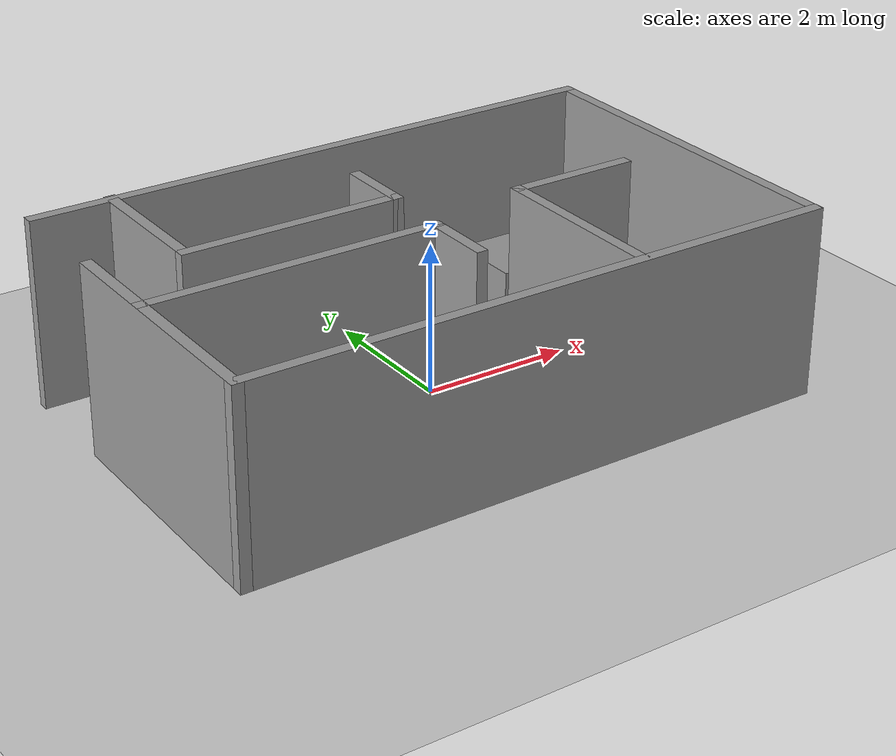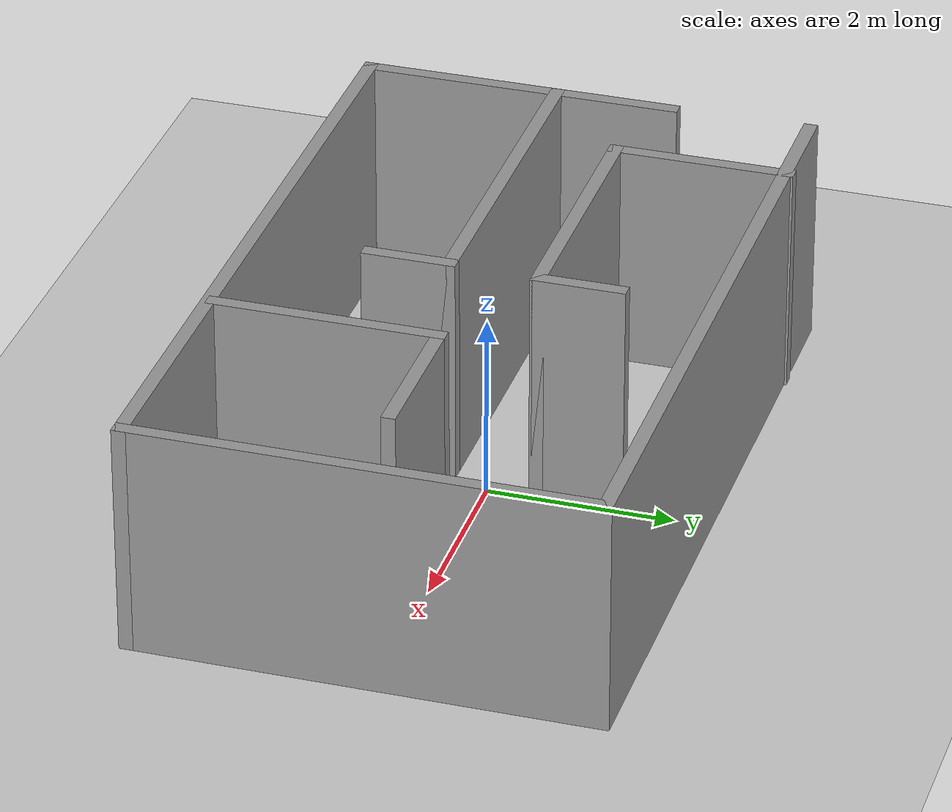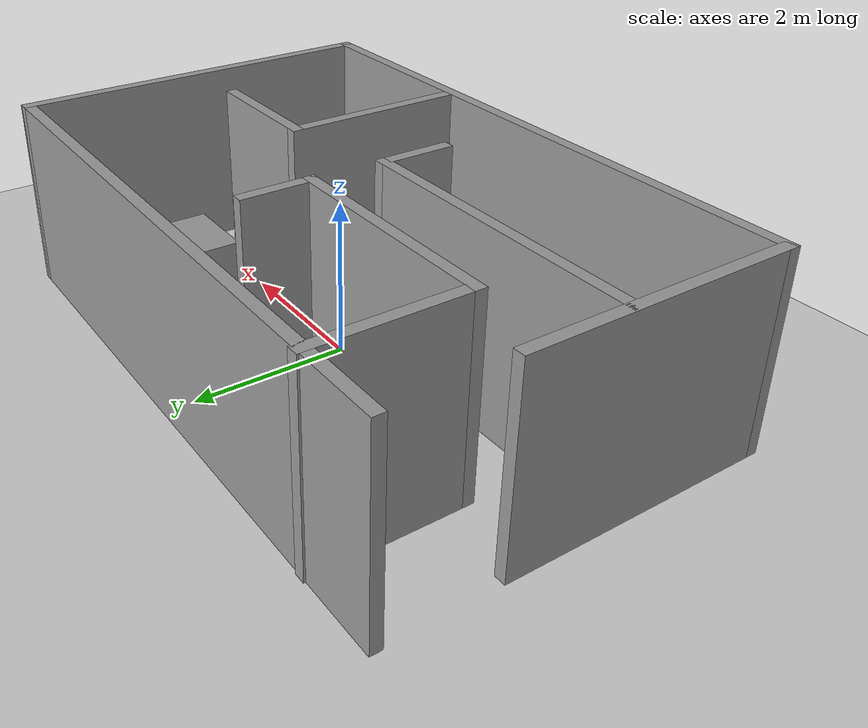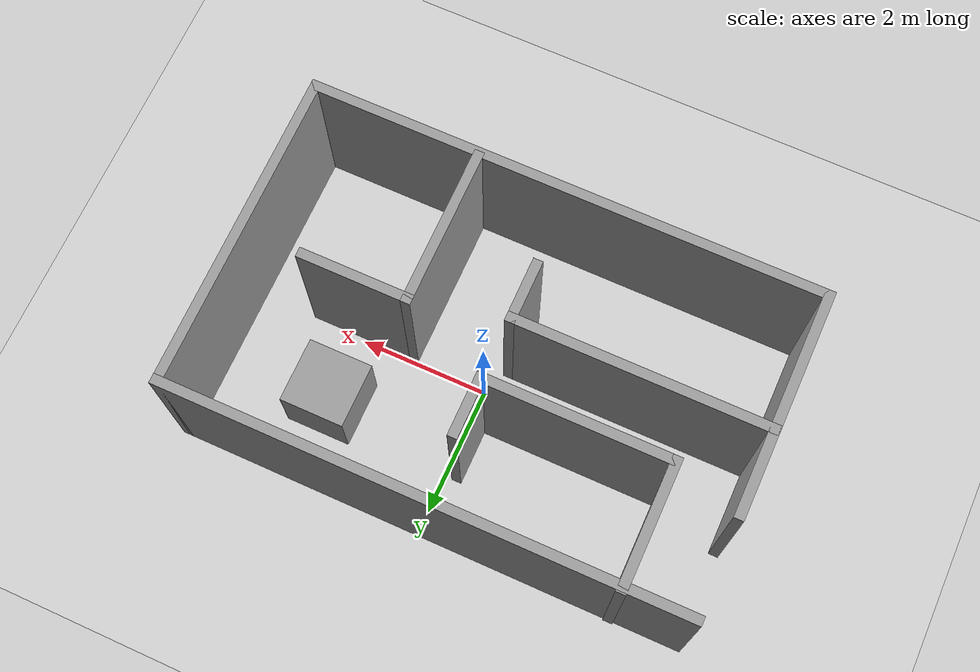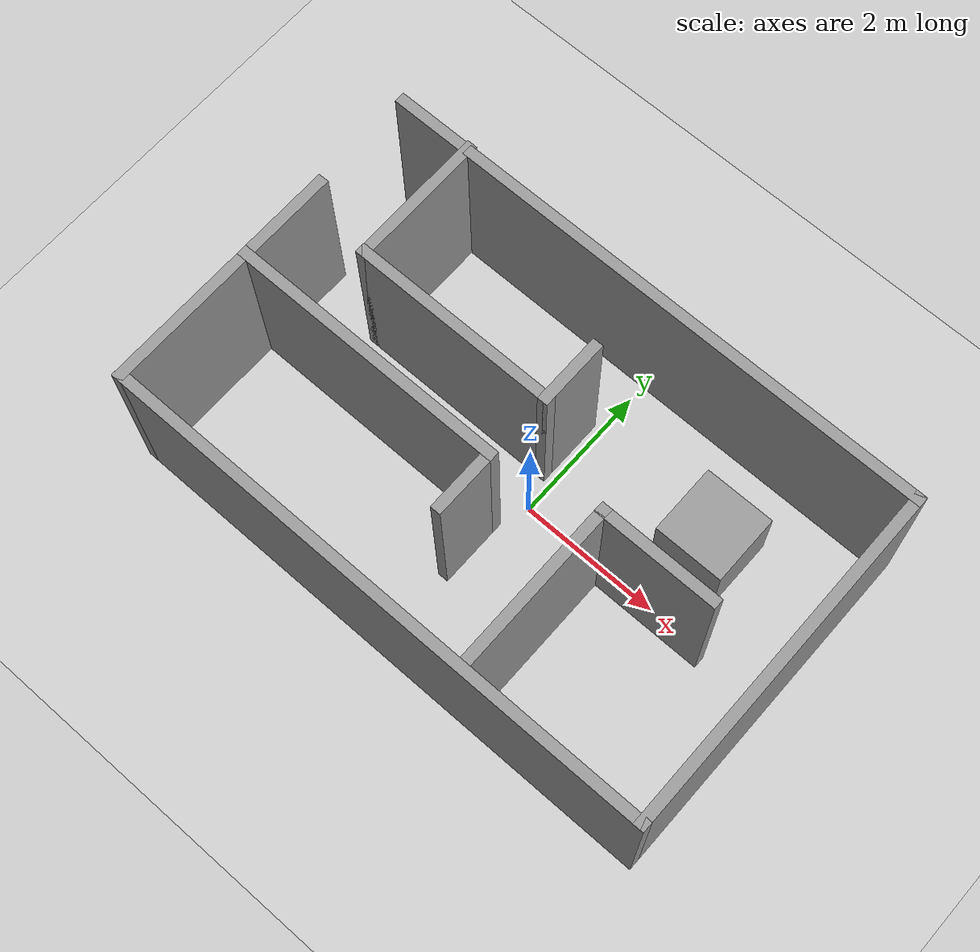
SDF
<sdf version="1.7">
 <world name="default">
  <light name="sun" type="directional">
   <pose>0 0 10 0 -0 0</pose>
   <diffuse>0.8 0.8 0.8 1</diffuse>
   <specular>0.2 0.2 0.2 1</specular>
   <attenuation>
    <range>1000</range>
    <constant>0.9</constant>
    <linear>0.01</linear>
    <quadratic>0.001</quadratic>
   </attenuation>
   <direction>-0.5 0.1 -0.9</direction>
   <spot><inner_angle>0</inner_angle><outer_angle>0</outer_angle><falloff>0</falloff></spot>
  </light>
  <model name="ground_plane">
   <static>1</static>
   <link name="link">
    <collision name="collision">
     <geometry><plane><normal>0 0 1</normal><size>100 100</size></plane></geometry>
     <surface>
      <contact><collide_bitmask>65535</collide_bitmask></contact>
      <friction><ode><mu>100</mu><mu2>50</mu2></ode></friction>
     </surface>
    </collision>
    <visual name="visual">
     <cast_shadows>0</cast_shadows>
     <geometry><plane><normal>0 0 1</normal><size>100 100</size></plane></geometry>
     <material>
      <script><uri>file://media/materials/scripts/gazebo.material</uri><name>Gazebo/Grey</name></script>
     </material>
    </visual>
   </link>
  </model>
  <gravity>0 0 -9.8</gravity>
  <magnetic_field>6e-06 2.3e-05 -4.2e-05</magnetic_field>
  <atmosphere type="adiabatic"/>
  <physics type="ode">
   <max_step_size>0.001</max_step_size>
   <real_time_factor>1</real_time_factor>
   <real_time_update_rate>1000</real_time_update_rate>
  </physics>
  <scene><ambient>0.4 0.4 0.4 1</ambient><background>0.7 0.7 0.7 1</background><shadows>1</shadows></scene>
  <audio><device>default</device></audio>
  <spherical_coordinates>
   <surface_model>EARTH_WGS84</surface_model>
   <latitude_deg>0</latitude_deg>
   <longitude_deg>0</longitude_deg>
   <elevation>0</elevation>
   <heading_deg>0</heading_deg>
  </spherical_coordinates>
  <model name="room">
   <pose>-0.145431 0.540872 0 0 -0 0</pose>
   <link name="Wall_0">
    <collision name="Wall_0_Collision">
     <geometry><box><size>8 0.15 2.5</size></box></geometry>
     <pose>0 0 1.25 0 -0 0</pose>
    </collision>
    <visual name="Wall_0_Visual">
     <pose>0 0 1.25 0 -0 0</pose>
     <geometry><box><size>8 0.15 2.5</size></box></geometry>
     <material>
      <script><uri>file://media/materials/scripts/gazebo.material</uri><name>Gazebo/Grey</name></script>
      <ambient>1 1 1 1</ambient>
     </material>
     <meta><layer>0</layer></meta>
    </visual>
    <pose>0 1.7725 0 0 -0 0</pose>
   </link>
   <link name="Wall_1">
    <collision name="Wall_1_Collision">
     <geometry><box><size>5 0.15 2.5</size></box></geometry>
     <pose>0 0 1.25 0 -0 0</pose>
    </collision>
    <visual name="Wall_1_Visual">
     <pose>0 0 1.25 0 -0 0</pose>
     <geometry><box><size>5 0.15 2.5</size></box></geometry>
     <material>
      <script><uri>file://media/materials/scripts/gazebo.material</uri><name>Gazebo/Grey</name></script>
      <ambient>1 1 1 1</ambient>
     </material>
     <meta><layer>0</layer></meta>
    </visual>
    <pose>3.925 -0.6525 0 0 -0 -1.5708</pose>
   </link>
   <link name="Wall_11">
    <collision name="Wall_11_Collision">
     <geometry><box><size>4 0.15 2.5</size></box></geometry>
     <pose>0 0 1.25 0 -0 0</pose>
    </collision>
    <visual name="Wall_11_Visual">
     <pose>0 0 1.25 0 -0 0</pose>
     <geometry><box><size>4 0.15 2.5</size></box></geometry>
     <material>
      <script><uri>file://media/materials/scripts/gazebo.material</uri><name>Gazebo/Grey</name></script>
      <ambient>1 1 1 1</ambient>
     </material>
     <meta><layer>0</layer></meta>
    </visual>
    <pose>-1.99928 -0.997043 0 0 -0 0</pose>
   </link>
   <link name="Wall_12">
    <collision name="Wall_12_Collision">
     <geometry><box><size>1 0.15 2.5</size></box></geometry>
     <pose>0 0 1.25 0 -0 0</pose>
    </collision>
    <visual name="Wall_12_Visual">
     <pose>0 0 1.25 0 -0 0</pose>
     <geometry><box><size>1 0.15 2.5</size></box></geometry>
     <material>
      <script><uri>file://media/materials/scripts/gazebo.material</uri><name>Gazebo/Grey</name></script>
      <ambient>1 1 1 1</ambient>
     </material>
     <meta><layer>0</layer></meta>
    </visual>
    <pose>-0.074283 -1.42204 0 0 -0 -1.5708</pose>
   </link>
   <link name="Wall_14">
    <collision name="Wall_14_Collision">
     <geometry><box><size>2.5 0.15 2.5</size></box></geometry>
     <pose>0 0 1.25 0 -0 0</pose>
    </collision>
    <visual name="Wall_14_Visual">
     <pose>0 0 1.25 0 -0 0</pose>
     <geometry><box><size>2.5 0.15 2.5</size></box></geometry>
     <material>
      <script><uri>file://media/materials/scripts/gazebo.material</uri><name>Gazebo/Grey</name></script>
      <ambient>1 1 1 1</ambient>
     </material>
     <meta><layer>0</layer></meta>
    </visual>
    <pose>1.34272 -1.84604 0 0 -0 1.5708</pose>
   </link>
   <link name="Wall_15">
    <collision name="Wall_15_Collision">
     <geometry><box><size>1.75 0.15 2.5</size></box></geometry>
     <pose>0 0 1.25 0 -0 0</pose>
    </collision>
    <visual name="Wall_15_Visual">
     <pose>0 0 1.25 0 -0 0</pose>
     <geometry><box><size>1.75 0.15 2.5</size></box></geometry>
     <material>
      <script><uri>file://media/materials/scripts/gazebo.material</uri><name>Gazebo/Grey</name></script>
      <ambient>1 1 1 1</ambient>
     </material>
     <meta><layer>0</layer></meta>
    </visual>
    <pose>2.14272 -0.671043 0 0 -0 0</pose>
   </link>
   <link name="Wall_19">
    <collision name="Wall_19_Collision">
     <geometry><box><size>2 0.15 2.5</size></box></geometry>
     <pose>0 0 1.25 0 -0 0</pose>
    </collision>
    <visual name="Wall_19_Visual">
     <pose>0 0 1.25 0 -0 0</pose>
     <geometry><box><size>2 0.15 2.5</size></box></geometry>
     <material>
      <script><uri>file://media/materials/scripts/gazebo.material</uri><name>Gazebo/Grey</name></script>
      <ambient>1 1 1 1</ambient>
     </material>
     <meta><layer>0</layer></meta>
    </visual>
    <pose>-2.88928 0.872457 0 0 -0 1.5708</pose>
   </link>
   <link name="Wall_2">
    <collision name="Wall_2_Collision">
     <geometry><box><size>8 0.15 2.5</size></box></geometry>
     <pose>0 0 1.25 0 -0 0</pose>
    </collision>
    <visual name="Wall_2_Visual">
     <pose>0 0 1.25 0 -0 0</pose>
     <geometry><box><size>8 0.15 2.5</size></box></geometry>
     <material>
      <script><uri>file://media/materials/scripts/gazebo.material</uri><name>Gazebo/Grey</name></script>
      <ambient>1 1 1 1</ambient>
     </material>
     <meta><layer>0</layer></meta>
    </visual>
    <pose>0 -3.0775 0 0 -0 3.14159</pose>
   </link>
   <link name="Wall_3">
    <collision name="Wall_3_Collision">
     <geometry><box><size>3.5 0.15 2.5</size></box></geometry>
     <pose>0 0 1.25 0 -0 0</pose>
    </collision>
    <visual name="Wall_3_Visual">
     <pose>0 0 1.25 0 -0 0</pose>
     <geometry><box><size>3.5 0.15 2.5</size></box></geometry>
     <material>
      <script><uri>file://media/materials/scripts/gazebo.material</uri><name>Gazebo/Grey</name></script>
      <ambient>1 1 1 1</ambient>
     </material>
     <meta><layer>0</layer></meta>
    </visual>
    <pose>-3.925 -1.4025 0 0 -0 1.5708</pose>
   </link>
   <link name="Wall_8">
    <collision name="Wall_8_Collision">
     <geometry><box><size>3 0.15 2.5</size></box></geometry>
     <pose>0 0 1.25 0 -0 0</pose>
    </collision>
    <visual name="Wall_8_Visual">
     <pose>0 0 1.25 0 -0 0</pose>
     <geometry><box><size>3 0.15 2.5</size></box></geometry>
     <material>
      <script><uri>file://media/materials/scripts/gazebo.material</uri><name>Gazebo/Grey</name></script>
      <ambient>1 1 1 1</ambient>
     </material>
     <meta><layer>0</layer></meta>
    </visual>
    <pose>-1.46428 -0.052543 0 0 -0 0</pose>
   </link>
   <link name="Wall_9">
    <collision name="Wall_9_Collision">
     <geometry><box><size>1 0.15 2.5</size></box></geometry>
     <pose>0 0 1.25 0 -0 0</pose>
    </collision>
    <visual name="Wall_9_Visual">
     <pose>0 0 1.25 0 -0 0</pose>
     <geometry><box><size>1 0.15 2.5</size></box></geometry>
     <material>
      <script><uri>file://media/materials/scripts/gazebo.material</uri><name>Gazebo/Grey</name></script>
      <ambient>1 1 1 1</ambient>
     </material>
     <meta><layer>0</layer></meta>
    </visual>
    <pose>-0.039283 0.372457 0 0 -0 1.5708</pose>
   </link>
   <static>1</static>
  </model>
  <model name="unit_box">
   <pose>2.0281 1.05894 0.5 0 -0 0</pose>
   <link name="link">
    <inertial>
     <mass>1</mass>
     <inertia>
      <ixx>0.166667</ixx>
      <ixy>0</ixy>
      <ixz>0</ixz>
      <iyy>0.166667</iyy>
      <iyz>0</iyz>
      <izz>0.166667</izz>
     </inertia>
    </inertial>
    <collision name="collision"><geometry><box><size>1 1 1</size></box></geometry></collision>
    <visual name="visual">
     <geometry><box><size>1 1 1</size></box></geometry>
     <material>
      <script><name>Gazebo/Grey</name><uri>file://media/materials/scripts/gazebo.material</uri></script>
     </material>
    </visual>
   </link>
  </model>
 </world>
</sdf>
